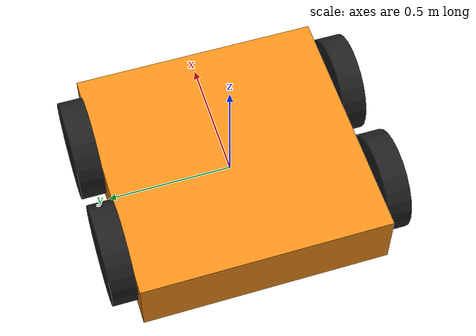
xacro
<?xml version='1.0'?>

<robot name="four_wheel_bot" xmlns:xacro="http://www.ros.org/wiki/xacro">

<xacro:property name="basem" value="5"/>
<xacro:property name="baselw" value="1"/>
<xacro:property name="baseh" value="0.25"/>

<xacro:include filename="$(find robolab_mini_project)/urdf/materials.xacro" />
<xacro:include filename="$(find robolab_mini_project)/urdf/macros.xacro" />
<xacro:include filename="$(find robolab_mini_project)/urdf/four_wheel_bot.gazebo"/>

  <link name="base_link">
  <pose>0 0 3 0 0 0</pose>
    <visual>
      <material name="orange"/>
      <origin xyz="0 0 0" rpy="0 0 0" />
      <geometry>
          <box size="${baselw} ${baselw} ${baseh}"/>
      </geometry>
    </visual>
    <collision>
      <origin xyz="0 0 0" rpy="0 0 0" />
      <geometry>
          <box size="${baselw} ${baselw} ${baseh}"/>
      </geometry>
    </collision>
    <inertial>
      <mass value="${basem}"/>
      <inertia ixx="0.13" ixy="0.0" ixz="0.0" iyy="0.21" iyz="0.0" izz="0.13"/>
    </inertial>

  </link>

  <xacro:wheel_link link_name="right_wheel_1"/>
  <xacro:wheel_link link_name="right_wheel_2"/>
  <xacro:wheel_link link_name="left_wheel_1"/>
  <xacro:wheel_link link_name="left_wheel_2"/>

  <xacro:joint_link joint_name="right_joint_1" child="right_wheel_1" origin_xyz="0.25 -0.55 0.025"/>
  <xacro:joint_link joint_name="right_joint_2" child="right_wheel_2" origin_xyz="-0.25 -0.55 0.025"/>
  <xacro:joint_link joint_name="left_joint_1" child="left_wheel_1" origin_xyz="0.25 0.55 0.025"/>
  <xacro:joint_link joint_name="left_joint_2" child="left_wheel_2" origin_xyz="-0.25 0.55 0.025"/>

</robot>

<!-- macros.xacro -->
<robot name="four_wheel_bot" xmlns:xacro = "https://www.ros.org/wiki/xacro">

<xacro:property name="wheel_radius" value="0.2"/>

    <xacro:macro name='wheel_link' params='link_name'>
        <link name="${link_name}">
            <inertial>
                <origin xyz="0 0 0" rpy="0 1.57 1.57"/>
                <mass value="0.5"/>
                <inertia ixx="0.01" ixy="0" ixz="0" iyy="0.005" iyz="0" izz="0.005"/>
            </inertial>

            <collision>
                <origin xyz="0 0 0" rpy="0 1.57 1.57"/>
                <geometry>
                    <cylinder radius="0.2" length="0.1"/>
                </geometry>
            </collision>

            <visual>
                <origin xyz="0 0 0" rpy="0 1.57 1.57"/>
                <geometry>
                    <cylinder radius="${wheel_radius}" length="0.1"/>
                </geometry>
                <material name="black"/>
            </visual>
        </link>
    </xacro:macro>

    <xacro:macro name='joint_link' params='joint_name child origin_xyz'>
        <joint name="${joint_name}" type="continuous">
            <origin xyz="${origin_xyz}" rpy="0 0 0"/>
            <parent link="base_link"/>
            <child link="${child}"/>
            <axis xyz="0 1 0"/>
        </joint>
    </xacro:macro>

</robot>
